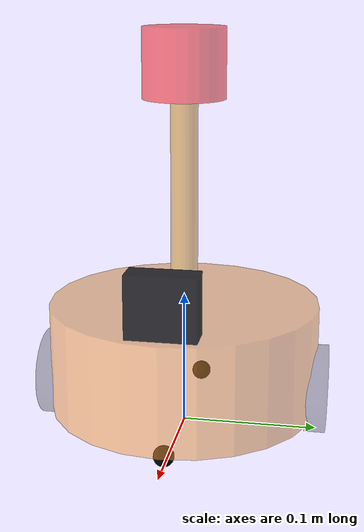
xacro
<robot name="mycar" xmlns:xacro="https://wiki.ros.org/xacro">
    <!-- 包含底盘、摄像头与雷达的xacro文件 -->
    <xacro:include filename="demo05_car_base.urdf.xacro"/>
    <xacro:include filename="demo06_car_camera.urdf.xacro"/>
    <xacro:include filename="demo07_car_laser.urdf.xacro"/>
</robot>

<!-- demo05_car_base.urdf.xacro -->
<robot name="mycar" xmlns:xacro="http://www.ros.org/wiki/xacro">
    <xacro:property name="footprint_radius" value="0.001"/>

      <link name="base_footprint">
      <visual>
        <geometry>
                <sphere radius="${footprint_radius}" />
        </geometry>
        </visual>
      </link>

    <xacro:property name="base_radius" value="0.1"/>
    <xacro:property name="base_length" value="0.08"/>
    <xacro:property name="lidi" value="0.015"/>
    <xacro:property name="base_joint_z" value="${base_length / 2 +lidi}"/>

      <link name="base_link">
    <visual>
      <geometry>
        <cylinder radius="0.1" length="0.08"/>

      </geometry>
      <origin xyz="0.0 0.0 0.0" rpy="0.0 0.0 0.0"/>
      <material name="baselink_color">
        <color rgba="1.0 0.6 0.2 0.5"/>
      </material>
    </visual>

  </link>
  <joint name="link2footprint" type="fixed">
      <parent link="base_footprint"/>
      <child link="base_link"/>
      <!-- 关节z的设置=车体高度/2+离地间距  -->
      <origin xyz="0.0 0.0 0.055" rpy="0.0 0.0 0.0"/>
    </joint>

  <!-- 3.添加驱动轮 R=3.25cm，宽=1.5cm  -->

  <xacro:property name="wheel_radius" value="0.0325"/>
  <xacro:property name="wheel_length" value="0.015"/>
  <xacro:property name="PI" value="3.1415927"/>
  <xacro:property name="wheel_joint_z" value="${-base_length / 2 - lidi + wheel_radius}"/>
  <!-- 注意结果为负数 -->
  <xacro:macro name="wheel_func" params="wheel_name flag">

      <link name="${wheel_name}_wheel">
      <visual>
        <geometry>
          <cylinder radius="${wheel_radius}" length="${wheel_length}"/>

        </geometry>
        <origin xyz="0.0 0.0 0.0" rpy="${PI / 2} 0.0 0.0"/>
        <material name="wheel_color">
          <color rgba="0.0 0.0 0.0 0.3"/>
        </material>
      </visual>
      </link>

      <joint name="${wheel_name}2footprint" type="continuous">
        <parent link="base_link"/>
        <child link="${wheel_name}_wheel"/>
        <!-- 偏移量的设置
        x 无偏移
        y 车体半径
        z  z= 体高度/2 + 离地间距 - 车轮半径 -->
        <origin xyz="0.0 ${0.1 * flag} ${wheel_joint_z}" rpy="0.0 0.0 0.0"/>
        <axis xyz="0.0 1.0 0.0"/>
      </joint>

  </xacro:macro>

  <xacro:wheel_func wheel_name="left" flag="1" />
  <xacro:wheel_func wheel_name="right" flag="-1" />

 <!-- 4.添加万向轮 -->

  <xacro:property name="small_wheel_radius" value="0.0075"/>
  <!-- z的偏移量 = 车体高度 / 2 + 离地间距 - 万向轮半径 -->
  <xacro:property name="small_joint_z" value="${(base_length / 2 + lidi - small_wheel_radius) * -1}"/>

  <xacro:macro name="small_wheel_func" params="small_wheel_name flag">
    <link name="${small_wheel_name}_wheel">
      <visual>
        <geometry>
          <sphere radius="${small_wheel_radius}"/>

        </geometry>
        <origin xyz="0.0 0.0 0.0" rpy="0.0 0.0 0.0"/>
        <material name="wheel_color">
          <color rgba="0.0 0.0 0.0 0.0"/>
        </material>
      </visual>
    </link>

   <joint name="${small_wheel_name}2footprint" type="continuous">
      <parent link="base_link"/>
      <child link="${small_wheel_name}_wheel"/>
      <!-- 偏移量的设置

      -->
      <origin xyz="${0.08 * flag} 0.0 ${small_joint_z}" rpy="0.0 0.0 0.0"/>
      <axis xyz="0.0 1.0 0.0"/>
   </joint>

  </xacro:macro>
  <xacro:small_wheel_func small_wheel_name="front" flag="1"/>
  <xacro:small_wheel_func small_wheel_name="back" flag="-1"/>
</robot>

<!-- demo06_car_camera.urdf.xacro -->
<robot name="mycar" xmlns:xacro="http://www.ros.org/wiki/xacro">
    <!-- 摄像头部件 -->
    <!-- 1.参数 -->
    <!--
      参数：
      连杆属性：厚度、宽度、高度
      关节属性：x y z
     -->
     <!-- 厚度（x） -->
     <xacro:property name="camera_x" value="0.02"/>
     <!-- 厚度（y） -->
     <xacro:property name="camera_y" value="0.05"/>
     <!-- 高度（z） -->
     <xacro:property name="camera_z" value="0.05"/>

     <xacro:property name="joint_camera_x" value="0.08"/>
     <!-- 厚度（x） -->
     <xacro:property name="joint_camera_y" value="0"/>
     <xacro:property name="joint_camera_z" value="${base_length / 2 + camera_x  }"/>

    <!-- 2.连杆和关节 -->
    <link name="camera">
      <visual>
        <geometry>
          <box size="${camera_x} ${camera_y} ${camera_z}"/>
        </geometry>
        <origin xyz="0.0 0.0 0.0" rpy="0.0 0.0 0.0"/>
        <material name="black">
          <color rgba="0.0 0.0 0.0 0.8"/>
        </material>
      </visual>
    </link>
    <joint name="camera2base" type="fixed">
      <parent link="base_link"/>
      <child link="camera"/>
      <origin xyz="${joint_camera_x} ${joint_camera_y} ${joint_camera_z}" rpy="0.0 0.0 0.0"/>

    </joint>
</robot>

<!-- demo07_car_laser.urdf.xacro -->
<robot name="mycar" xmlns:xacro="http://www.ros.org/wiki/xacro">
    <!-- 雷达部件 -->
    <!-- 参数 -->

    <!-- 1.支架 尺寸：半径、高度   关节偏移量
   -->
 <xacro:property name="support_radius"  value="0.01"/>
 <xacro:property name="support_length" value="0.15"/>
 <xacro:property name="laser_radius" value="0.03"/>
 <xacro:property name="laser_length" value="0.05"/>

 <xacro:property name="joint_suport_x" value="0"/>
 <xacro:property name="joint_suport_y" value="0"/>
 <xacro:property name="joint_suport_z" value="${base_length / 2 + support_length / 2}"/>
 <!-- z=车体高度/2 + 支架高度/2 -->
 <xacro:property name="joint_laser_x" value="0"/>
 <xacro:property name="joint_laser_y" value="0"/>
 <xacro:property name="joint_laser_z" value="${support_length / 2 + laser_length / 2}"/>
 <!-- z=支架高度/2+雷达高度/2 -->

 <!-- 支架    -->
    <link name="support">
        <visual>
            <geometry>
                <cylinder radius="${support_radius}" length="${support_length}"/>
            </geometry>
            <material name="yellow">
                <color rgba="0.8 0.5 0.0 0.5"/>
            </material>
        </visual>
    </link>
   <joint name="support2base" type="fixed">
    <origin xyz="${joint_suport_x} ${joint_suport_y} ${joint_suport_z}" rpy="0.0 0.0 0.0"/>
    <parent link="base_link"/>
    <child link="support"/>
    <axis xyz="0.0 0.0 0.0"/>
   </joint>
    <!-- 2.雷达  雷达尺寸：半径  高度
    关节偏移量：x y z -->
 <link name="laser">
        <visual>
            <geometry>
                <cylinder radius="${laser_radius}" length="${laser_length}"/>
            </geometry>
            <material name="red">
                <color rgba="1.0 0.0 0.0 0.5"/>
            </material>
        </visual>
    </link>
   <joint name="laser2support" type="fixed">
        <origin xyz="${joint_laser_x} ${joint_laser_y} ${joint_laser_z}" rpy="0.0 0.0 0.0"/>
        <parent link="support"/>
        <child link="laser"/>
        <axis xyz="0.0 0.0 0.0"/>
   </joint>

</robot>
